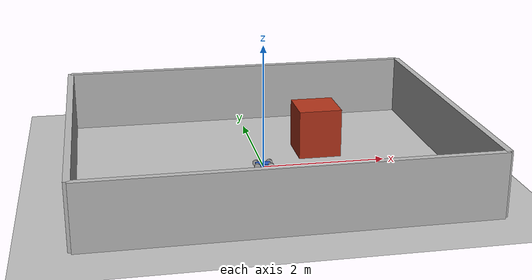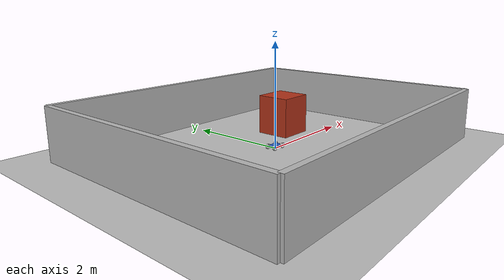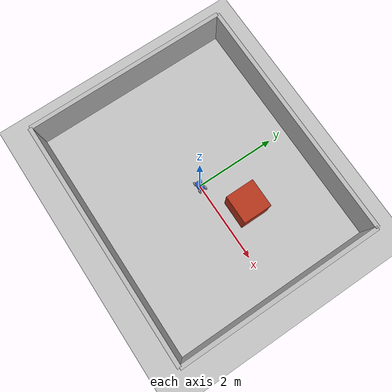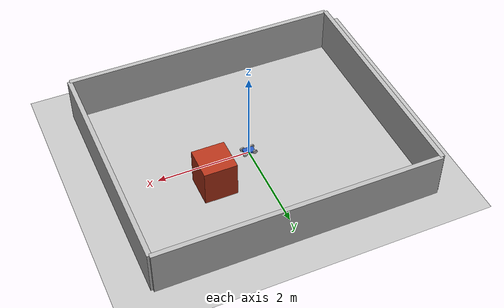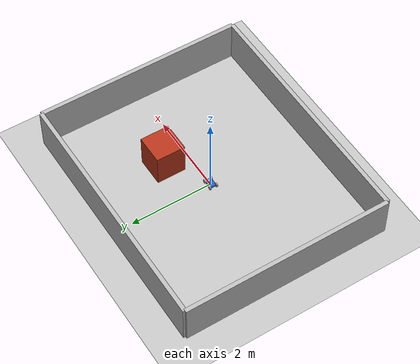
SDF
<?xml version="1.0"?>
<sdf version="1.9">
  <world name="test_room">
    <physics name="1ms" type="ignored">
      <max_step_size>0.001</max_step_size>
      <real_time_factor>1.0</real_time_factor>
    </physics>
    <plugin filename="gz-sim-physics-system"
            name="gz::sim::systems::Physics"/>
    <plugin filename="gz-sim-user-commands-system"
            name="gz::sim::systems::UserCommands"/>
    <plugin filename="gz-sim-scene-broadcaster-system"
            name="gz::sim::systems::SceneBroadcaster"/>
    <plugin filename="gz-sim-sensors-system"
            name="gz::sim::systems::Sensors">
      <render_engine>ogre2</render_engine>
    </plugin>
    <plugin filename="gz-sim-imu-system"
            name="gz::sim::systems::Imu"/>

    <light type="directional" name="sun">
      <cast_shadows>true</cast_shadows>
      <pose>0 0 10 0 0 0</pose>
      <diffuse>0.8 0.8 0.8 1</diffuse>
      <specular>0.2 0.2 0.2 1</specular>
      <direction>-0.5 0.1 -0.9</direction>
    </light>

    <model name="ground">
      <static>true</static>
      <link name="ground_link">
        <collision name="collision">
          <geometry><plane><normal>0 0 1</normal><size>20 20</size></plane></geometry>
        </collision>
        <visual name="visual">
          <geometry><plane><normal>0 0 1</normal><size>20 20</size></plane></geometry>
          <material><diffuse>0.75 0.75 0.75 1</diffuse></material>
        </visual>
      </link>
    </model>

    <model name="north_wall">
      <static>true</static>
      <pose>0 2.5 0.5 0 0 0</pose>
      <link name="wall">
        <collision name="collision"><geometry><box><size>6 0.1 1</size></box></geometry></collision>
        <visual name="visual"><geometry><box><size>6 0.1 1</size></box></geometry></visual>
      </link>
    </model>
    <model name="south_wall">
      <static>true</static>
      <pose>0 -2.5 0.5 0 0 0</pose>
      <link name="wall">
        <collision name="collision"><geometry><box><size>6 0.1 1</size></box></geometry></collision>
        <visual name="visual"><geometry><box><size>6 0.1 1</size></box></geometry></visual>
      </link>
    </model>
    <model name="east_wall">
      <static>true</static>
      <pose>3 0 0.5 0 0 0</pose>
      <link name="wall">
        <collision name="collision"><geometry><box><size>0.1 5 1</size></box></geometry></collision>
        <visual name="visual"><geometry><box><size>0.1 5 1</size></box></geometry></visual>
      </link>
    </model>
    <model name="west_wall">
      <static>true</static>
      <pose>-3 0 0.5 0 0 0</pose>
      <link name="wall">
        <collision name="collision"><geometry><box><size>0.1 5 1</size></box></geometry></collision>
        <visual name="visual"><geometry><box><size>0.1 5 1</size></box></geometry></visual>
      </link>
    </model>
    <model name="center_obstacle">
      <static>true</static>
      <pose>1 0.6 0.4 0 0 0</pose>
      <link name="box">
        <collision name="collision"><geometry><box><size>0.7 0.7 0.8</size></box></geometry></collision>
        <visual name="visual">
          <geometry><box><size>0.7 0.7 0.8</size></box></geometry>
          <material><diffuse>0.7 0.2 0.1 1</diffuse></material>
        </visual>
      </link>
    </model>

    <model name="lidar_robot">
      <pose>0 0 0 0 0 0</pose>
      <link name="base_footprint">
        <inertial>
          <pose>0 0 0.049 0 0 0</pose>
          <mass>8.0</mass>
          <inertia>
            <ixx>0.08</ixx><iyy>0.10</iyy><izz>0.16</izz>
          </inertia>
        </inertial>
        <collision name="body_collision">
          <pose>0 0 0.049 0 0 0</pose>
          <geometry><box><size>0.24 0.16 0.04</size></box></geometry>
        </collision>
        <visual name="body_visual">
          <pose>0 0 0.049 0 0 0</pose>
          <geometry><box><size>0.24 0.16 0.04</size></box></geometry>
          <material><diffuse>0.15 0.35 0.75 1</diffuse></material>
        </visual>
        <sensor name="lidar" type="gpu_lidar">
          <pose>0.10 0 0.182 0 0 0</pose>
          <topic>/scan</topic>
          <gz_frame_id>base_laser</gz_frame_id>
          <update_rate>10</update_rate>
          <always_on>true</always_on>
          <visualize>true</visualize>
          <lidar>
            <scan>
              <horizontal>
                <samples>500</samples>
                <resolution>1</resolution>
                <min_angle>0</min_angle>
                <max_angle>6.283185307</max_angle>
              </horizontal>
            </scan>
            <range><min>0.02</min><max>12.0</max><resolution>0.01</resolution></range>
          </lidar>
        </sensor>
        <sensor name="imu" type="imu">
          <pose>0.075 0 0.104 0 0 1.5708</pose>
          <topic>/imu/data</topic>
          <gz_frame_id>imu_link</gz_frame_id>
          <update_rate>100</update_rate>
          <always_on>true</always_on>
        </sensor>
      </link>

      <!-- Wheel X positions assume a 0.22 m wheelbase. -->
      <link name="left_front_wheel">
        <pose>0.11 0.0825 0.049 -1.570796327 0 0</pose>
        <inertial><mass>0.3</mass><inertia><ixx>0.0004</ixx><iyy>0.0004</iyy><izz>0.0004</izz></inertia></inertial>
        <collision name="collision">
          <geometry><cylinder><radius>0.049</radius><length>0.03</length></cylinder></geometry>
          <surface><friction><ode>
            <mu>1</mu><mu2>1</mu2><slip1>0.035</slip1><slip2>0</slip2>
            <fdir1>0 0 1</fdir1>
          </ode></friction></surface>
        </collision>
        <visual name="visual"><geometry><cylinder><radius>0.049</radius><length>0.03</length></cylinder></geometry></visual>
      </link>
      <link name="left_rear_wheel">
        <pose>-0.11 0.0825 0.049 -1.570796327 0 0</pose>
        <inertial><mass>0.3</mass><inertia><ixx>0.0004</ixx><iyy>0.0004</iyy><izz>0.0004</izz></inertia></inertial>
        <collision name="collision">
          <geometry><cylinder><radius>0.049</radius><length>0.03</length></cylinder></geometry>
          <surface><friction><ode>
            <mu>1</mu><mu2>1</mu2><slip1>0.035</slip1><slip2>0</slip2>
            <fdir1>0 0 1</fdir1>
          </ode></friction></surface>
        </collision>
        <visual name="visual"><geometry><cylinder><radius>0.049</radius><length>0.03</length></cylinder></geometry></visual>
      </link>
      <link name="right_front_wheel">
        <pose>0.11 -0.0825 0.049 -1.570796327 0 0</pose>
        <inertial><mass>0.3</mass><inertia><ixx>0.0004</ixx><iyy>0.0004</iyy><izz>0.0004</izz></inertia></inertial>
        <collision name="collision">
          <geometry><cylinder><radius>0.049</radius><length>0.03</length></cylinder></geometry>
          <surface><friction><ode>
            <mu>1</mu><mu2>1</mu2><slip1>0.035</slip1><slip2>0</slip2>
            <fdir1>0 0 1</fdir1>
          </ode></friction></surface>
        </collision>
        <visual name="visual"><geometry><cylinder><radius>0.049</radius><length>0.03</length></cylinder></geometry></visual>
      </link>
      <link name="right_rear_wheel">
        <pose>-0.11 -0.0825 0.049 -1.570796327 0 0</pose>
        <inertial><mass>0.3</mass><inertia><ixx>0.0004</ixx><iyy>0.0004</iyy><izz>0.0004</izz></inertia></inertial>
        <collision name="collision">
          <geometry><cylinder><radius>0.049</radius><length>0.03</length></cylinder></geometry>
          <surface><friction><ode>
            <mu>1</mu><mu2>1</mu2><slip1>0.035</slip1><slip2>0</slip2>
            <fdir1>0 0 1</fdir1>
          </ode></friction></surface>
        </collision>
        <visual name="visual"><geometry><cylinder><radius>0.049</radius><length>0.03</length></cylinder></geometry></visual>
      </link>

      <joint name="left_front_joint" type="revolute">
        <parent>base_footprint</parent><child>left_front_wheel</child>
        <axis><xyz expressed_in="__model__">0 1 0</xyz></axis>
      </joint>
      <joint name="left_rear_joint" type="revolute">
        <parent>base_footprint</parent><child>left_rear_wheel</child>
        <axis><xyz expressed_in="__model__">0 1 0</xyz></axis>
      </joint>
      <joint name="right_front_joint" type="revolute">
        <parent>base_footprint</parent><child>right_front_wheel</child>
        <axis><xyz expressed_in="__model__">0 1 0</xyz></axis>
      </joint>
      <joint name="right_rear_joint" type="revolute">
        <parent>base_footprint</parent><child>right_rear_wheel</child>
        <axis><xyz expressed_in="__model__">0 1 0</xyz></axis>
      </joint>

      <plugin filename="gz-sim-diff-drive-system"
              name="gz::sim::systems::DiffDrive">
        <left_joint>left_front_joint</left_joint>
        <left_joint>left_rear_joint</left_joint>
        <right_joint>right_front_joint</right_joint>
        <right_joint>right_rear_joint</right_joint>
        <wheel_separation>0.165</wheel_separation>
        <wheel_radius>0.049</wheel_radius>
        <topic>/cmd_vel</topic>
        <odom_topic>/odom</odom_topic>
        <tf_topic>/tf</tf_topic>
        <frame_id>odom</frame_id>
        <child_frame_id>base_footprint</child_frame_id>
        <odom_publish_frequency>50</odom_publish_frequency>
      </plugin>
    </model>
  </world>
</sdf>
